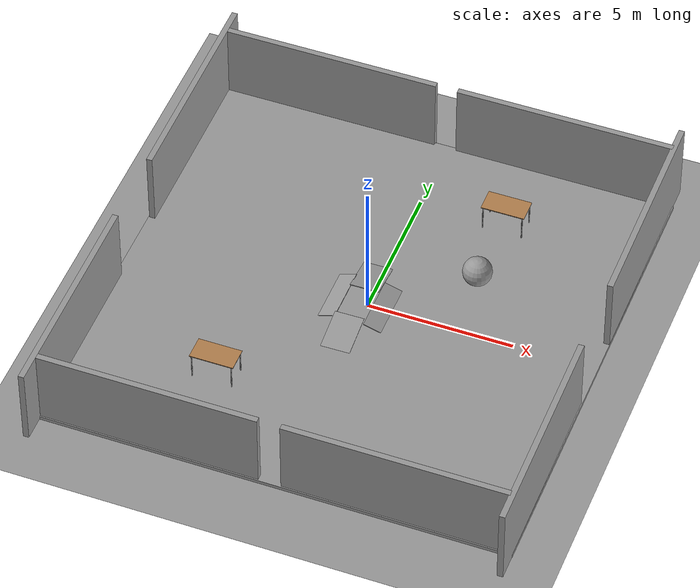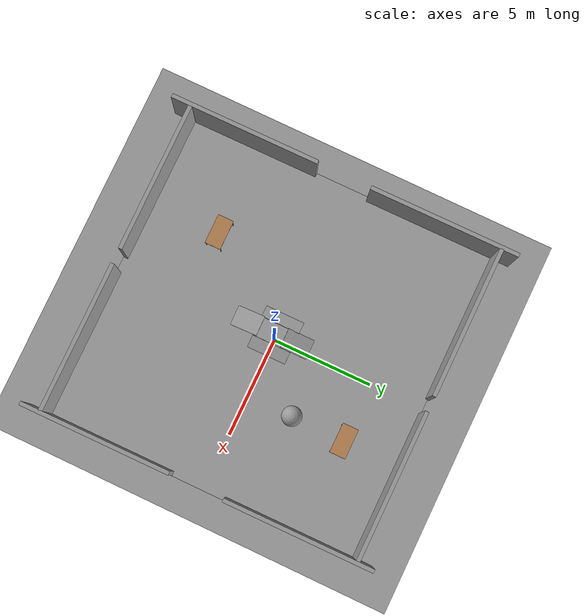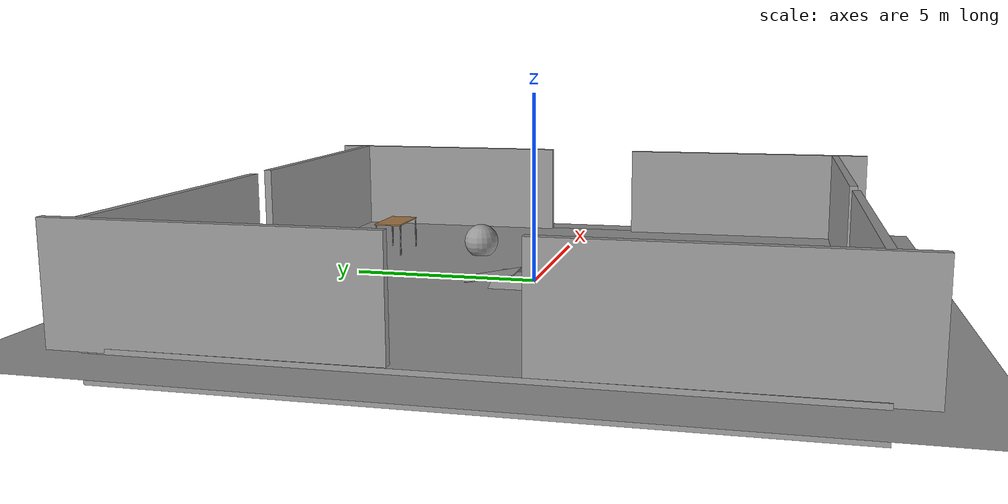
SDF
<?xml version='1.0'?>
<sdf version='1.6'>
  <model name='Arena'>
    <link name='link_0'>
      <inertial>
        <mass>211.142</mass>
        <inertia>
          <ixx>4535.01</ixx>
          <ixy>0</ixy>
          <ixz>0</ixz>
          <iyy>4563.37</iyy>
          <iyz>0</iyz>
          <izz>9075.25</izz>
        </inertia>
        <pose frame=''>0 0 0 0 -0 0</pose>
      </inertial>
      <pose frame=''>-0.143267 -0.242699 -0.352368 0 -0 0</pose>
      <visual name='visual'>
        <pose frame=''>0 0 0 0 -0 0</pose>
        <geometry>
          <box>
            <size>16.0841 16.0339 0.810703</size>
          </box>
        </geometry>
        <material>
          <lighting>1</lighting>
          <script>
            <uri>file://media/materials/scripts/gazebo.material</uri>
            <name>Gazebo/Grey</name>
          </script>
          <shader type='pixel'/>
        </material>
        <transparency>0</transparency>
        <cast_shadows>1</cast_shadows>
      </visual>
      <collision name='collision'>
        <laser_retro>0</laser_retro>
        <max_contacts>10</max_contacts>
        <pose frame=''>0 0 0 0 -0 0</pose>
        <geometry>
          <box>
            <size>16.0841 16.0339 0.810703</size>
          </box>
        </geometry>
        <surface>
          <friction>
            <ode>
              <mu>1</mu>
              <mu2>1</mu2>
              <fdir1>0 0 0</fdir1>
              <slip1>0</slip1>
              <slip2>0</slip2>
            </ode>
            <torsional>
              <coefficient>1</coefficient>
              <patch_radius>0</patch_radius>
              <surface_radius>0</surface_radius>
              <use_patch_radius>1</use_patch_radius>
              <ode>
                <slip>0</slip>
              </ode>
            </torsional>
          </friction>
          <bounce>
            <restitution_coefficient>0</restitution_coefficient>
            <threshold>1e+06</threshold>
          </bounce>
          <contact>
            <collide_without_contact>0</collide_without_contact>
            <collide_without_contact_bitmask>1</collide_without_contact_bitmask>
            <collide_bitmask>1</collide_bitmask>
            <ode>
              <soft_cfm>0</soft_cfm>
              <soft_erp>0.2</soft_erp>
              <kp>1e+13</kp>
              <kd>1</kd>
              <max_vel>0.01</max_vel>
              <min_depth>0</min_depth>
            </ode>
            <bullet>
              <split_impulse>1</split_impulse>
              <split_impulse_penetration_threshold>-0.01</split_impulse_penetration_threshold>
              <soft_cfm>0</soft_cfm>
              <soft_erp>0.2</soft_erp>
              <kp>1e+13</kp>
              <kd>1</kd>
            </bullet>
          </contact>
        </surface>
      </collision>
    </link>
    <link name='link_2'>
      <inertial>
        <mass>0.0436273</mass>
        <inertia>
          <ixx>0.0141396</ixx>
          <ixy>0</ixy>
          <ixz>0</ixz>
          <iyy>0.0036374</iyy>
          <iyz>0</iyz>
          <izz>0.0177734</izz>
        </inertia>
        <pose frame=''>0 0 0 0 -0 0</pose>
      </inertial>
      <pose frame=''>-1.21332 -0.050864 0.081999 0 -0.34024 0</pose>
      <gravity>0</gravity>
      <self_collide>0</self_collide>
      <kinematic>1</kinematic>
      <enable_wind>0</enable_wind>
      <visual name='visual'>
        <pose frame=''>0 0 0 0 -0 0</pose>
        <geometry>
          <box>
            <size>1 1.97198 0.022195</size>
          </box>
        </geometry>
        <material>
          <lighting>1</lighting>
          <script>
            <uri>file://media/materials/scripts/gazebo.material</uri>
            <name>Gazebo/Grey</name>
          </script>
          <shader type='pixel'>
            <normal_map>__default__</normal_map>
          </shader>
        </material>
        <transparency>0</transparency>
        <cast_shadows>1</cast_shadows>
      </visual>
      <collision name='collision'>
        <laser_retro>0</laser_retro>
        <max_contacts>10</max_contacts>
        <pose frame=''>0 0 0 0 -0 0</pose>
        <geometry>
          <box>
            <size>1 1.97198 0.022195</size>
          </box>
        </geometry>
        <surface>
          <friction>
            <ode>
              <mu>1</mu>
              <mu2>1</mu2>
              <fdir1>0 0 0</fdir1>
              <slip1>0</slip1>
              <slip2>0</slip2>
            </ode>
            <torsional>
              <coefficient>1</coefficient>
              <patch_radius>0</patch_radius>
              <surface_radius>0</surface_radius>
              <use_patch_radius>1</use_patch_radius>
              <ode>
                <slip>0</slip>
              </ode>
            </torsional>
          </friction>
          <bounce>
            <restitution_coefficient>0</restitution_coefficient>
            <threshold>1e+06</threshold>
          </bounce>
          <contact>
            <collide_without_contact>0</collide_without_contact>
            <collide_without_contact_bitmask>1</collide_without_contact_bitmask>
            <collide_bitmask>1</collide_bitmask>
            <ode>
              <soft_cfm>0</soft_cfm>
              <soft_erp>0.2</soft_erp>
              <kp>1e+13</kp>
              <kd>1</kd>
              <max_vel>0.01</max_vel>
              <min_depth>0</min_depth>
            </ode>
            <bullet>
              <split_impulse>1</split_impulse>
              <split_impulse_penetration_threshold>-0.01</split_impulse_penetration_threshold>
              <soft_cfm>0</soft_cfm>
              <soft_erp>0.2</soft_erp>
              <kp>1e+13</kp>
              <kd>1</kd>
            </bullet>
          </contact>
        </surface>
      </collision>
    </link>
    <link name='link_2_clone'>
      <inertial>
        <mass>0.0436273</mass>
        <inertia>
          <ixx>0.0141396</ixx>
          <ixy>0</ixy>
          <ixz>0</ixz>
          <iyy>0.0036374</iyy>
          <iyz>0</iyz>
          <izz>0.0177734</izz>
        </inertia>
        <pose frame=''>0 0 0 0 -0 0</pose>
      </inertial>
      <pose frame=''>0.718143 -0.050863 0.081999 0 0.29884 0</pose>
      <gravity>0</gravity>
      <self_collide>0</self_collide>
      <kinematic>1</kinematic>
      <enable_wind>0</enable_wind>
      <visual name='visual'>
        <pose frame=''>0 0 0 0 -0 0</pose>
        <geometry>
          <box>
            <size>1 1.97198 0.022195</size>
          </box>
        </geometry>
        <material>
          <lighting>1</lighting>
          <script>
            <uri>file://media/materials/scripts/gazebo.material</uri>
            <name>Gazebo/Grey</name>
          </script>
          <shader type='pixel'>
            <normal_map>__default__</normal_map>
          </shader>
        </material>
        <transparency>0</transparency>
        <cast_shadows>1</cast_shadows>
      </visual>
      <collision name='collision'>
        <laser_retro>0</laser_retro>
        <max_contacts>10</max_contacts>
        <pose frame=''>0 0 0 0 -0 0</pose>
        <geometry>
          <box>
            <size>1 1.97198 0.022195</size>
          </box>
        </geometry>
        <surface>
          <friction>
            <ode>
              <mu>1</mu>
              <mu2>1</mu2>
              <fdir1>0 0 0</fdir1>
              <slip1>0</slip1>
              <slip2>0</slip2>
            </ode>
            <torsional>
              <coefficient>1</coefficient>
              <patch_radius>0</patch_radius>
              <surface_radius>0</surface_radius>
              <use_patch_radius>1</use_patch_radius>
              <ode>
                <slip>0</slip>
              </ode>
            </torsional>
          </friction>
          <bounce>
            <restitution_coefficient>0</restitution_coefficient>
            <threshold>1e+06</threshold>
          </bounce>
          <contact>
            <collide_without_contact>0</collide_without_contact>
            <collide_without_contact_bitmask>1</collide_without_contact_bitmask>
            <collide_bitmask>1</collide_bitmask>
            <ode>
              <soft_cfm>0</soft_cfm>
              <soft_erp>0.2</soft_erp>
              <kp>1e+13</kp>
              <kd>1</kd>
              <max_vel>0.01</max_vel>
              <min_depth>0</min_depth>
            </ode>
            <bullet>
              <split_impulse>1</split_impulse>
              <split_impulse_penetration_threshold>-0.01</split_impulse_penetration_threshold>
              <soft_cfm>0</soft_cfm>
              <soft_erp>0.2</soft_erp>
              <kp>1e+13</kp>
              <kd>1</kd>
            </bullet>
          </contact>
        </surface>
      </collision>
    </link>
    <link name='link_2_clone_clone'>
      <inertial>
        <mass>0.0436273</mass>
        <inertia>
          <ixx>0.0141396</ixx>
          <ixy>0</ixy>
          <ixz>0</ixz>
          <iyy>0.0036374</iyy>
          <iyz>0</iyz>
          <izz>0.0177734</izz>
        </inertia>
        <pose frame=''>0 0 0 0 -0 0</pose>
      </inertial>
      <pose frame=''>-0.278646 -1.83834 0.1156 0.183024 0.000697 0.013495</pose>
      <gravity>0</gravity>
      <self_collide>0</self_collide>
      <kinematic>1</kinematic>
      <enable_wind>0</enable_wind>
      <visual name='visual'>
        <pose frame=''>0 0 0 0 -0 0</pose>
        <geometry>
          <box>
            <size>1 1.97198 0.022195</size>
          </box>
        </geometry>
        <material>
          <lighting>1</lighting>
          <script>
            <uri>file://media/materials/scripts/gazebo.material</uri>
            <name>Gazebo/Grey</name>
          </script>
          <shader type='pixel'>
            <normal_map>__default__</normal_map>
          </shader>
        </material>
        <transparency>0</transparency>
        <cast_shadows>1</cast_shadows>
      </visual>
      <collision name='collision'>
        <laser_retro>0</laser_retro>
        <max_contacts>10</max_contacts>
        <pose frame=''>0 0 0 0 -0 0</pose>
        <geometry>
          <box>
            <size>1 1.97198 0.022195</size>
          </box>
        </geometry>
        <surface>
          <friction>
            <ode>
              <mu>1</mu>
              <mu2>1</mu2>
              <fdir1>0 0 0</fdir1>
              <slip1>0</slip1>
              <slip2>0</slip2>
            </ode>
            <torsional>
              <coefficient>1</coefficient>
              <patch_radius>0</patch_radius>
              <surface_radius>0</surface_radius>
              <use_patch_radius>1</use_patch_radius>
              <ode>
                <slip>0</slip>
              </ode>
            </torsional>
          </friction>
          <bounce>
            <restitution_coefficient>0</restitution_coefficient>
            <threshold>1e+06</threshold>
          </bounce>
          <contact>
            <collide_without_contact>0</collide_without_contact>
            <collide_without_contact_bitmask>1</collide_without_contact_bitmask>
            <collide_bitmask>1</collide_bitmask>
            <ode>
              <soft_cfm>0</soft_cfm>
              <soft_erp>0.2</soft_erp>
              <kp>1e+13</kp>
              <kd>1</kd>
              <max_vel>0.01</max_vel>
              <min_depth>0</min_depth>
            </ode>
            <bullet>
              <split_impulse>1</split_impulse>
              <split_impulse_penetration_threshold>-0.01</split_impulse_penetration_threshold>
              <soft_cfm>0</soft_cfm>
              <soft_erp>0.2</soft_erp>
              <kp>1e+13</kp>
              <kd>1</kd>
            </bullet>
          </contact>
        </surface>
      </collision>
    </link>
    <link name='link_2_clone_clone_clone'>
      <inertial>
        <mass>0.0436273</mass>
        <inertia>
          <ixx>0.0141396</ixx>
          <ixy>0</ixy>
          <ixz>0</ixz>
          <iyy>0.0036374</iyy>
          <iyz>0</iyz>
          <izz>0.0177734</izz>
        </inertia>
        <pose frame=''>0 0 0 0 -0 0</pose>
      </inertial>
      <pose frame=''>-0.278424 1.36313 0.1156 -0.190864 0.000697 0.013495</pose>
      <gravity>0</gravity>
      <self_collide>0</self_collide>
      <kinematic>1</kinematic>
      <enable_wind>0</enable_wind>
      <visual name='visual'>
        <pose frame=''>0 0 0 0 -0 0</pose>
        <geometry>
          <box>
            <size>1 1.97198 0.022195</size>
          </box>
        </geometry>
        <material>
          <lighting>1</lighting>
          <script>
            <uri>file://media/materials/scripts/gazebo.material</uri>
            <name>Gazebo/Grey</name>
          </script>
          <shader type='pixel'>
            <normal_map>__default__</normal_map>
          </shader>
        </material>
        <transparency>0</transparency>
        <cast_shadows>1</cast_shadows>
      </visual>
      <collision name='collision'>
        <laser_retro>0</laser_retro>
        <max_contacts>10</max_contacts>
        <pose frame=''>0 0 0 0 -0 0</pose>
        <geometry>
          <box>
            <size>1 1.97198 0.022195</size>
          </box>
        </geometry>
        <surface>
          <friction>
            <ode>
              <mu>1</mu>
              <mu2>1</mu2>
              <fdir1>0 0 0</fdir1>
              <slip1>0</slip1>
              <slip2>0</slip2>
            </ode>
            <torsional>
              <coefficient>1</coefficient>
              <patch_radius>0</patch_radius>
              <surface_radius>0</surface_radius>
              <use_patch_radius>1</use_patch_radius>
              <ode>
                <slip>0</slip>
              </ode>
            </torsional>
          </friction>
          <bounce>
            <restitution_coefficient>0</restitution_coefficient>
            <threshold>1e+06</threshold>
          </bounce>
          <contact>
            <collide_without_contact>0</collide_without_contact>
            <collide_without_contact_bitmask>1</collide_without_contact_bitmask>
            <collide_bitmask>1</collide_bitmask>
            <ode>
              <soft_cfm>0</soft_cfm>
              <soft_erp>0.2</soft_erp>
              <kp>1e+13</kp>
              <kd>1</kd>
              <max_vel>0.01</max_vel>
              <min_depth>0</min_depth>
            </ode>
            <bullet>
              <split_impulse>1</split_impulse>
              <split_impulse_penetration_threshold>-0.01</split_impulse_penetration_threshold>
              <soft_cfm>0</soft_cfm>
              <soft_erp>0.2</soft_erp>
              <kp>1e+13</kp>
              <kd>1</kd>
            </bullet>
          </contact>
        </surface>
      </collision>
    </link>
    <link name='link_3'>
      <inertial>
        <mass>1</mass>
        <inertia>
          <ixx>0.1</ixx>
          <ixy>0</ixy>
          <ixz>0</ixz>
          <iyy>0.1</iyy>
          <iyz>0</iyz>
          <izz>0.1</izz>
        </inertia>
      </inertial>
      <pose frame=''>2.94874 2.29281 0.454764 0 -0 0</pose>
      <visual name='visual'>
        <pose frame=''>0 0 0 0 -0 0</pose>
        <geometry>
          <sphere>
            <radius>0.5</radius>
          </sphere>
        </geometry>
        <material>
          <lighting>1</lighting>
          <script>
            <uri>file://media/materials/scripts/gazebo.material</uri>
            <name>Gazebo/Grey</name>
          </script>
          <shader type='pixel'/>
        </material>
        <transparency>0</transparency>
        <cast_shadows>1</cast_shadows>
      </visual>
      <collision name='collision'>
        <laser_retro>0</laser_retro>
        <max_contacts>10</max_contacts>
        <pose frame=''>0 0 0 0 -0 0</pose>
        <geometry>
          <sphere>
            <radius>0.5</radius>
          </sphere>
        </geometry>
        <surface>
          <friction>
            <ode>
              <mu>1</mu>
              <mu2>1</mu2>
              <fdir1>0 0 0</fdir1>
              <slip1>0</slip1>
              <slip2>0</slip2>
            </ode>
            <torsional>
              <coefficient>1</coefficient>
              <patch_radius>0</patch_radius>
              <surface_radius>0</surface_radius>
              <use_patch_radius>1</use_patch_radius>
              <ode>
                <slip>0</slip>
              </ode>
            </torsional>
          </friction>
          <bounce>
            <restitution_coefficient>0</restitution_coefficient>
            <threshold>1e+06</threshold>
          </bounce>
          <contact>
            <collide_without_contact>0</collide_without_contact>
            <collide_without_contact_bitmask>1</collide_without_contact_bitmask>
            <collide_bitmask>1</collide_bitmask>
            <ode>
              <soft_cfm>0</soft_cfm>
              <soft_erp>0.2</soft_erp>
              <kp>1e+13</kp>
              <kd>1</kd>
              <max_vel>0.01</max_vel>
              <min_depth>0</min_depth>
            </ode>
            <bullet>
              <split_impulse>1</split_impulse>
              <split_impulse_penetration_threshold>-0.01</split_impulse_penetration_threshold>
              <soft_cfm>0</soft_cfm>
              <soft_erp>0.2</soft_erp>
              <kp>1e+13</kp>
              <kd>1</kd>
            </bullet>
          </contact>
        </surface>
      </collision>
    </link>
    <model name='grey_wall'>
      <static>1</static>
      <link name='link'>
        <pose frame=''>0 0 1.4 0 -0 0</pose>
        <collision name='collision'>
          <geometry>
            <box>
              <size>7.5 0.2 2.8</size>
            </box>
          </geometry>
        </collision>
        <visual name='visual'>
          <cast_shadows>0</cast_shadows>
          <geometry>
            <box>
              <size>7.5 0.2 2.8</size>
            </box>
          </geometry>
          <material>
            <script>
              <uri>model://grey_wall/materials/scripts</uri>
              <uri>model://grey_wall/materials/textures</uri>
              <name>vrc/grey_wall</name>
            </script>
          </material>
        </visual>
      </link>
      <pose frame=''>3.98671 7.7655 -0.045236 0 -0 0</pose>
    </model>
    <model name='grey_wall_0'>
      <static>1</static>
      <link name='link'>
        <pose frame=''>0 0 1.4 0 -0 0</pose>
        <collision name='collision'>
          <geometry>
            <box>
              <size>7.5 0.2 2.8</size>
            </box>
          </geometry>
        </collision>
        <visual name='visual'>
          <cast_shadows>0</cast_shadows>
          <geometry>
            <box>
              <size>7.5 0.2 2.8</size>
            </box>
          </geometry>
          <material>
            <script>
              <uri>model://grey_wall/materials/scripts</uri>
              <uri>model://grey_wall/materials/textures</uri>
              <name>vrc/grey_wall</name>
            </script>
          </material>
        </visual>
      </link>
      <pose frame=''>7.77579 4.85719 -0.045236 0 0 -1.56581</pose>
    </model>
    <model name='grey_wall_0_clone'>
      <static>1</static>
      <link name='link'>
        <pose frame=''>0 0 1.4 0 -0 0</pose>
        <collision name='collision'>
          <geometry>
            <box>
              <size>7.5 0.2 2.8</size>
            </box>
          </geometry>
        </collision>
        <visual name='visual'>
          <cast_shadows>0</cast_shadows>
          <geometry>
            <box>
              <size>7.5 0.2 2.8</size>
            </box>
          </geometry>
          <material>
            <script>
              <uri>model://grey_wall/materials/scripts</uri>
              <uri>model://grey_wall/materials/textures</uri>
              <name>vrc/grey_wall</name>
            </script>
          </material>
        </visual>
      </link>
      <pose frame=''>7.78033 -5.35571 -0.045236 0 0 -1.56581</pose>
    </model>
    <model name='grey_wall_0_clone_clone'>
      <static>1</static>
      <link name='link'>
        <pose frame=''>0 0 1.4 0 -0 0</pose>
        <collision name='collision'>
          <geometry>
            <box>
              <size>7.5 0.2 2.8</size>
            </box>
          </geometry>
        </collision>
        <visual name='visual'>
          <cast_shadows>0</cast_shadows>
          <geometry>
            <box>
              <size>7.5 0.2 2.8</size>
            </box>
          </geometry>
          <material>
            <script>
              <uri>model://grey_wall/materials/scripts</uri>
              <uri>model://grey_wall/materials/textures</uri>
              <name>vrc/grey_wall</name>
            </script>
          </material>
        </visual>
      </link>
      <pose frame=''>-8.07346 4.85719 -0.045236 0 0 -1.56581</pose>
    </model>
    <model name='grey_wall_0_clone_clone_clone'>
      <static>1</static>
      <link name='link'>
        <pose frame=''>0 0 1.4 0 -0 0</pose>
        <collision name='collision'>
          <geometry>
            <box>
              <size>7.5 0.2 2.8</size>
            </box>
          </geometry>
        </collision>
        <visual name='visual'>
          <cast_shadows>0</cast_shadows>
          <geometry>
            <box>
              <size>7.5 0.2 2.8</size>
            </box>
          </geometry>
          <material>
            <script>
              <uri>model://grey_wall/materials/scripts</uri>
              <uri>model://grey_wall/materials/textures</uri>
              <name>vrc/grey_wall</name>
            </script>
          </material>
        </visual>
      </link>
      <pose frame=''>-8.06614 -5.35571 -0.045236 0 0 -1.56581</pose>
    </model>
    <model name='grey_wall_clone'>
      <static>1</static>
      <link name='link'>
        <pose frame=''>0 0 1.4 0 -0 0</pose>
        <collision name='collision'>
          <geometry>
            <box>
              <size>7.5 0.2 2.8</size>
            </box>
          </geometry>
        </collision>
        <visual name='visual'>
          <cast_shadows>0</cast_shadows>
          <geometry>
            <box>
              <size>7.5 0.2 2.8</size>
            </box>
          </geometry>
          <material>
            <script>
              <uri>model://grey_wall/materials/scripts</uri>
              <uri>model://grey_wall/materials/textures</uri>
              <name>vrc/grey_wall</name>
            </script>
          </material>
        </visual>
      </link>
      <pose frame=''>-4.26996 7.7655 -0.045236 0 -0 0</pose>
    </model>
    <model name='grey_wall_clone_clone'>
      <static>1</static>
      <link name='link'>
        <pose frame=''>0 0 1.4 0 -0 0</pose>
        <collision name='collision'>
          <geometry>
            <box>
              <size>7.5 0.2 2.8</size>
            </box>
          </geometry>
        </collision>
        <visual name='visual'>
          <cast_shadows>0</cast_shadows>
          <geometry>
            <box>
              <size>7.5 0.2 2.8</size>
            </box>
          </geometry>
          <material>
            <script>
              <uri>model://grey_wall/materials/scripts</uri>
              <uri>model://grey_wall/materials/textures</uri>
              <name>vrc/grey_wall</name>
            </script>
          </material>
        </visual>
      </link>
      <pose frame=''>-4.26996 -8.11371 -0.045236 0 -0 0</pose>
    </model>
    <model name='grey_wall_clone_clone_clone'>
      <static>1</static>
      <link name='link'>
        <pose frame=''>0 0 1.4 0 -0 0</pose>
        <collision name='collision'>
          <geometry>
            <box>
              <size>7.5 0.2 2.8</size>
            </box>
          </geometry>
        </collision>
        <visual name='visual'>
          <cast_shadows>0</cast_shadows>
          <geometry>
            <box>
              <size>7.5 0.2 2.8</size>
            </box>
          </geometry>
          <material>
            <script>
              <uri>model://grey_wall/materials/scripts</uri>
              <uri>model://grey_wall/materials/textures</uri>
              <name>vrc/grey_wall</name>
            </script>
          </material>
        </visual>
      </link>
      <pose frame=''>3.98671 -8.11371 -0.045236 0 -0 0</pose>
    </model>
    <model name='ground_plane'>
      <static>1</static>
      <link name='link'>
        <collision name='collision'>
          <geometry>
            <plane>
              <normal>0 0 1</normal>
              <size>100 100</size>
            </plane>
          </geometry>
          <surface>
            <contact>
              <collide_bitmask>65535</collide_bitmask>
            </contact>
            <friction>
              <ode>
                <mu>100</mu>
                <mu2>50</mu2>
              </ode>
            </friction>
          </surface>
        </collision>
        <visual name='visual'>
          <cast_shadows>0</cast_shadows>
          <geometry>
            <plane>
              <normal>0 0 1</normal>
              <size>100 100</size>
            </plane>
          </geometry>
          <material>
            <script>
              <uri>file://media/materials/scripts/gazebo.material</uri>
              <name>Gazebo/Grey</name>
            </script>
          </material>
        </visual>
      </link>
      <pose frame=''>-0.138382 -0.241966 -0.045236 0 -0 0</pose>
    </model>
    <model name='table'>
      <static>1</static>
      <link name='link'>
        <collision name='surface'>
          <pose frame=''>0 0 1 0 -0 0</pose>
          <geometry>
            <box>
              <size>1.5 0.8 0.03</size>
            </box>
          </geometry>
          <surface>
            <friction>
              <ode>
                <mu>0.6</mu>
                <mu2>0.6</mu2>
              </ode>
            </friction>
          </surface>
        </collision>
        <visual name='visual1'>
          <pose frame=''>0 0 1 0 -0 0</pose>
          <geometry>
            <box>
              <size>1.5 0.8 0.03</size>
            </box>
          </geometry>
          <material>
            <script>
              <uri>file://media/materials/scripts/gazebo.material</uri>
              <name>Gazebo/Wood</name>
            </script>
          </material>
        </visual>
        <collision name='front_left_leg'>
          <pose frame=''>0.68 0.38 0.5 0 -0 0</pose>
          <geometry>
            <cylinder>
              <radius>0.02</radius>
              <length>1</length>
            </cylinder>
          </geometry>
        </collision>
        <visual name='front_left_leg'>
          <pose frame=''>0.68 0.38 0.5 0 -0 0</pose>
          <geometry>
            <cylinder>
              <radius>0.02</radius>
              <length>1</length>
            </cylinder>
          </geometry>
          <material>
            <script>
              <uri>file://media/materials/scripts/gazebo.material</uri>
              <name>Gazebo/Grey</name>
            </script>
          </material>
        </visual>
        <collision name='front_right_leg'>
          <pose frame=''>0.68 -0.38 0.5 0 -0 0</pose>
          <geometry>
            <cylinder>
              <radius>0.02</radius>
              <length>1</length>
            </cylinder>
          </geometry>
        </collision>
        <visual name='front_right_leg'>
          <pose frame=''>0.68 -0.38 0.5 0 -0 0</pose>
          <geometry>
            <cylinder>
              <radius>0.02</radius>
              <length>1</length>
            </cylinder>
          </geometry>
          <material>
            <script>
              <uri>file://media/materials/scripts/gazebo.material</uri>
              <name>Gazebo/Grey</name>
            </script>
          </material>
        </visual>
        <collision name='back_right_leg'>
          <pose frame=''>-0.68 -0.38 0.5 0 -0 0</pose>
          <geometry>
            <cylinder>
              <radius>0.02</radius>
              <length>1</length>
            </cylinder>
          </geometry>
        </collision>
        <visual name='back_right_leg'>
          <pose frame=''>-0.68 -0.38 0.5 0 -0 0</pose>
          <geometry>
            <cylinder>
              <radius>0.02</radius>
              <length>1</length>
            </cylinder>
          </geometry>
          <material>
            <script>
              <uri>file://media/materials/scripts/gazebo.material</uri>
              <name>Gazebo/Grey</name>
            </script>
          </material>
        </visual>
        <collision name='back_left_leg'>
          <pose frame=''>-0.68 0.38 0.5 0 -0 0</pose>
          <geometry>
            <cylinder>
              <radius>0.02</radius>
              <length>1</length>
            </cylinder>
          </geometry>
        </collision>
        <visual name='back_left_leg'>
          <pose frame=''>-0.68 0.38 0.5 0 -0 0</pose>
          <geometry>
            <cylinder>
              <radius>0.02</radius>
              <length>1</length>
            </cylinder>
          </geometry>
          <material>
            <script>
              <uri>file://media/materials/scripts/gazebo.material</uri>
              <name>Gazebo/Grey</name>
            </script>
          </material>
        </visual>
      </link>
      <pose frame=''>-3.44077 -4.52995 -0.045236 0 -0 0</pose>
    </model>
    <model name='table_0'>
      <static>1</static>
      <link name='link'>
        <collision name='surface'>
          <pose frame=''>0 0 1 0 -0 0</pose>
          <geometry>
            <box>
              <size>1.5 0.8 0.03</size>
            </box>
          </geometry>
          <surface>
            <friction>
              <ode>
                <mu>0.6</mu>
                <mu2>0.6</mu2>
              </ode>
            </friction>
          </surface>
        </collision>
        <visual name='visual1'>
          <pose frame=''>0 0 1 0 -0 0</pose>
          <geometry>
            <box>
              <size>1.5 0.8 0.03</size>
            </box>
          </geometry>
          <material>
            <script>
              <uri>file://media/materials/scripts/gazebo.material</uri>
              <name>Gazebo/Wood</name>
            </script>
          </material>
        </visual>
        <collision name='front_left_leg'>
          <pose frame=''>0.68 0.38 0.5 0 -0 0</pose>
          <geometry>
            <cylinder>
              <radius>0.02</radius>
              <length>1</length>
            </cylinder>
          </geometry>
        </collision>
        <visual name='front_left_leg'>
          <pose frame=''>0.68 0.38 0.5 0 -0 0</pose>
          <geometry>
            <cylinder>
              <radius>0.02</radius>
              <length>1</length>
            </cylinder>
          </geometry>
          <material>
            <script>
              <uri>file://media/materials/scripts/gazebo.material</uri>
              <name>Gazebo/Grey</name>
            </script>
          </material>
        </visual>
        <collision name='front_right_leg'>
          <pose frame=''>0.68 -0.38 0.5 0 -0 0</pose>
          <geometry>
            <cylinder>
              <radius>0.02</radius>
              <length>1</length>
            </cylinder>
          </geometry>
        </collision>
        <visual name='front_right_leg'>
          <pose frame=''>0.68 -0.38 0.5 0 -0 0</pose>
          <geometry>
            <cylinder>
              <radius>0.02</radius>
              <length>1</length>
            </cylinder>
          </geometry>
          <material>
            <script>
              <uri>file://media/materials/scripts/gazebo.material</uri>
              <name>Gazebo/Grey</name>
            </script>
          </material>
        </visual>
        <collision name='back_right_leg'>
          <pose frame=''>-0.68 -0.38 0.5 0 -0 0</pose>
          <geometry>
            <cylinder>
              <radius>0.02</radius>
              <length>1</length>
            </cylinder>
          </geometry>
        </collision>
        <visual name='back_right_leg'>
          <pose frame=''>-0.68 -0.38 0.5 0 -0 0</pose>
          <geometry>
            <cylinder>
              <radius>0.02</radius>
              <length>1</length>
            </cylinder>
          </geometry>
          <material>
            <script>
              <uri>file://media/materials/scripts/gazebo.material</uri>
              <name>Gazebo/Grey</name>
            </script>
          </material>
        </visual>
        <collision name='back_left_leg'>
          <pose frame=''>-0.68 0.38 0.5 0 -0 0</pose>
          <geometry>
            <cylinder>
              <radius>0.02</radius>
              <length>1</length>
            </cylinder>
          </geometry>
        </collision>
        <visual name='back_left_leg'>
          <pose frame=''>-0.68 0.38 0.5 0 -0 0</pose>
          <geometry>
            <cylinder>
              <radius>0.02</radius>
              <length>1</length>
            </cylinder>
          </geometry>
          <material>
            <script>
              <uri>file://media/materials/scripts/gazebo.material</uri>
              <name>Gazebo/Grey</name>
            </script>
          </material>
        </visual>
      </link>
      <pose frame=''>2.97592 4.99222 -0.045236 0 -0 0</pose>
    </model>
    <static>0</static>
    <allow_auto_disable>1</allow_auto_disable>
  </model>
</sdf>
